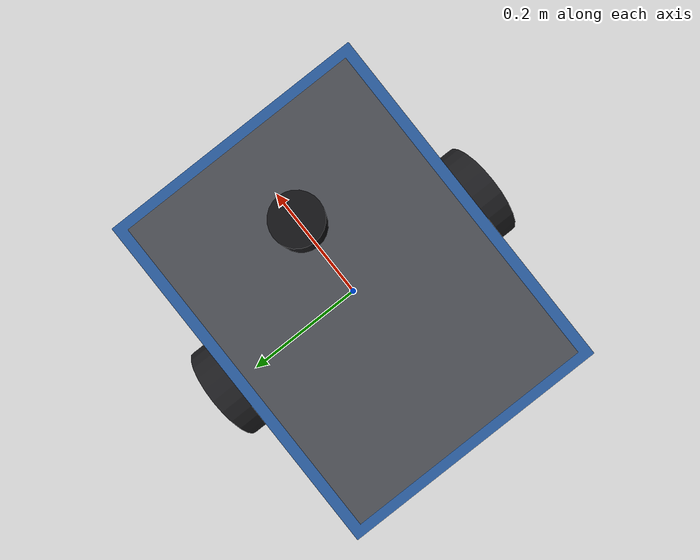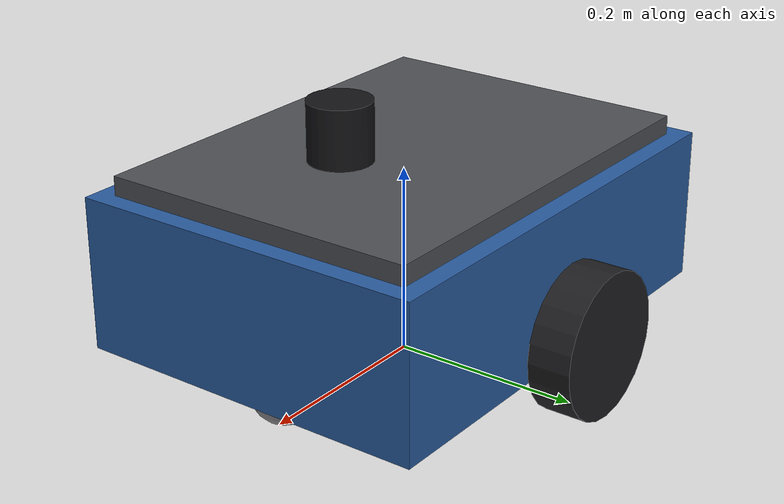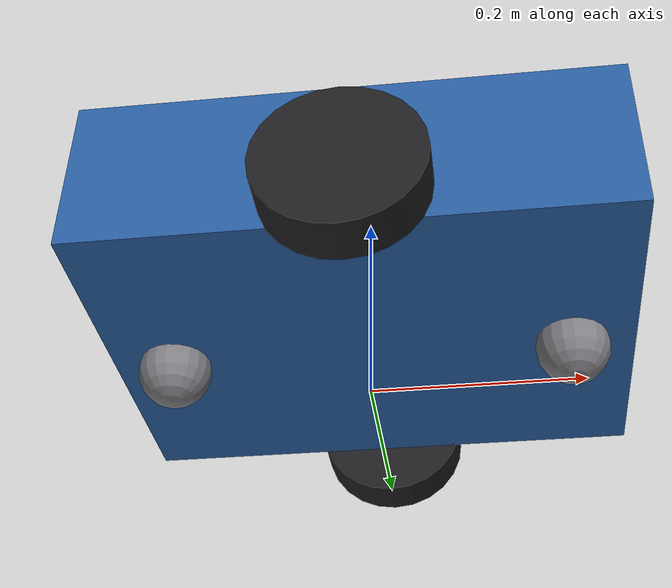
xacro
<?xml version="1.0"?>
<!-- 差速小车：两个驱动轮 + 前后万向球，尺寸接近常见的室内 AGV（0.50 x 0.40 m）。 -->
<robot name="diff_car" xmlns:xacro="http://www.ros.org/wiki/xacro">
  <xacro:include filename="$(find robot_nav_sim)/urdf/common.xacro"/>

  <xacro:property name="wheel_r" value="0.075"/>
  <xacro:property name="wheel_w" value="0.045"/>
  <xacro:property name="wheel_sep" value="0.44"/>
  <xacro:property name="body_l" value="0.50"/>
  <xacro:property name="body_w" value="0.38"/>
  <xacro:property name="body_t" value="0.16"/>
  <!-- 底盘中心离地高度：轮心高度 wheel_r，底盘中心再高 0.05 -->
  <xacro:property name="body_z" value="${wheel_r + 0.05}"/>

  <material name="car_blue"><color rgba="0.16 0.36 0.62 1"/></material>
  <material name="deck_grey"><color rgba="0.30 0.31 0.33 1"/></material>

  <link name="${root}"/>
  <joint name="base_joint" type="fixed">
    <parent link="${root}"/>
    <child link="${trunk}"/>
    <origin xyz="0 0 ${body_z}" rpy="0 0 0"/>
  </joint>

  <link name="${trunk}">
    <inertial>
      <mass value="12.0"/>
      <inertia ixx="0.17" ixy="0" ixz="0" iyy="0.27" iyz="0" izz="0.40"/>
    </inertial>
    <visual>
      <geometry><box size="${body_l} ${body_w} ${body_t}"/></geometry>
      <material name="car_blue"/>
    </visual>
    <visual>
      <origin xyz="0 0 ${body_t / 2 + 0.01}" rpy="0 0 0"/>
      <geometry><box size="${body_l - 0.04} ${body_w - 0.04} 0.02"/></geometry>
      <material name="deck_grey"/>
    </visual>
    <collision>
      <geometry><box size="${body_l} ${body_w} ${body_t}"/></geometry>
    </collision>
  </link>

  <xacro:drive_wheel name="left_wheel"  parent="${trunk}" xyz="0 ${wheel_sep / 2} ${wheel_r - body_z}"
                     radius="${wheel_r}" width="${wheel_w}"/>
  <xacro:drive_wheel name="right_wheel" parent="${trunk}" xyz="0 ${-wheel_sep / 2} ${wheel_r - body_z}"
                     radius="${wheel_r}" width="${wheel_w}"/>
  <xacro:caster name="front_caster" parent="${trunk}" xyz="0.19 0 ${0.035 - body_z}" radius="0.035" visible="true"/>
  <xacro:caster name="rear_caster"  parent="${trunk}" xyz="-0.19 0 ${0.035 - body_z}" radius="0.035" visible="true"/>

  <!-- Mid-360 装在车顶中间 -->
  <xacro:mid360 parent="${trunk}" xyz="0.10 0 ${body_t / 2 + 0.085}"/>

  <xacro:diff_drive_plugin separation="${wheel_sep}" radius="${wheel_r}" max_v="1.0" max_w="2.0"/>
  <xacro:common_plugins/>
</robot>

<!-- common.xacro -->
<!-- 三台机器人共用的部分：Mid-360 雷达 + IMU、关节状态、仿真真值。话题名对三台机器人都一样。 -->
<robot xmlns:xacro="http://www.ros.org/wiki/xacro">

  <xacro:arg name="root_link" default="base_footprint"/>
  <xacro:arg name="trunk_link" default="base_link"/>
  <xacro:property name="root" value="$(arg root_link)"/>
  <xacro:property name="trunk" value="$(arg trunk_link)"/>

  <material name="lidar_black"><color rgba="0.08 0.08 0.09 1"/></material>

  <!--
    Livox Mid-360 近似模型：gpu_lidar，水平 360°（900 点），垂直 -7°~52°（32 线），10 Hz，测距 0.1~40 m。
    真机是非重复扫描，这里用规则扫描近似；对 2D 导航和 3D 建图练习足够。
    内置 IMU 200 Hz，和雷达同一个坐标系（真机有几厘米偏移，这里忽略）。
  -->
  <xacro:macro name="mid360" params="parent xyz rpy:='0 0 0'">
    <joint name="mid360_joint" type="fixed">
      <parent link="${parent}"/>
      <child link="mid360_link"/>
      <origin xyz="${xyz}" rpy="${rpy}"/>
    </joint>
    <link name="mid360_link">
      <visual>
        <origin xyz="0 0 -0.02" rpy="0 0 0"/>
        <geometry><cylinder radius="0.0325" length="0.06"/></geometry>
        <material name="lidar_black"/>
      </visual>
    </link>
    <gazebo reference="mid360_link">
      <sensor name="mid360" type="gpu_lidar">
        <gz_frame_id>mid360_link</gz_frame_id>
        <topic>/mid360/scan</topic>
        <update_rate>10</update_rate>
        <always_on>true</always_on>
        <visualize>false</visualize>
        <lidar>
          <scan>
            <horizontal>
              <samples>900</samples>
              <resolution>1</resolution>
              <min_angle>-3.14159</min_angle>
              <max_angle>3.14159</max_angle>
            </horizontal>
            <vertical>
              <samples>32</samples>
              <resolution>1</resolution>
              <min_angle>-0.1222</min_angle>
              <max_angle>0.9076</max_angle>
            </vertical>
          </scan>
          <range>
            <min>0.1</min>
            <max>40.0</max>
            <resolution>0.01</resolution>
          </range>
          <noise>
            <type>gaussian</type>
            <mean>0.0</mean>
            <stddev>0.01</stddev>
          </noise>
        </lidar>
      </sensor>
      <sensor name="mid360_imu" type="imu">
        <gz_frame_id>mid360_link</gz_frame_id>
        <topic>/mid360/imu</topic>
        <update_rate>200</update_rate>
        <always_on>true</always_on>
        <imu>
          <angular_velocity>
            <x><noise type="gaussian"><mean>0</mean><stddev>0.002</stddev></noise></x>
            <y><noise type="gaussian"><mean>0</mean><stddev>0.002</stddev></noise></y>
            <z><noise type="gaussian"><mean>0</mean><stddev>0.002</stddev></noise></z>
          </angular_velocity>
          <linear_acceleration>
            <x><noise type="gaussian"><mean>0</mean><stddev>0.02</stddev></noise></x>
            <y><noise type="gaussian"><mean>0</mean><stddev>0.02</stddev></noise></y>
            <z><noise type="gaussian"><mean>0</mean><stddev>0.02</stddev></noise></z>
          </linear_acceleration>
        </imu>
      </sensor>
    </gazebo>
  </xacro:macro>

  <!-- 关节状态 + 仿真真值（3D 位姿，只用于楼层自动识别和评估，导航本身不用） -->
  <xacro:macro name="common_plugins">
    <gazebo>
      <plugin filename="gz-sim-joint-state-publisher-system" name="gz::sim::systems::JointStatePublisher">
        <topic>/robot/joint_states</topic>
      </plugin>
      <plugin filename="gz-sim-odometry-publisher-system" name="gz::sim::systems::OdometryPublisher">
        <odom_frame>world</odom_frame>
        <robot_base_frame>${root}</robot_base_frame>
        <odom_topic>/robot/ground_truth</odom_topic>
        <tf_topic>/robot/ground_truth/tf</tf_topic>
        <dimensions>3</dimensions>
        <odom_publish_frequency>50</odom_publish_frequency>
      </plugin>
    </gazebo>
  </xacro:macro>

  <!-- 差速驱动：订阅 /robot/cmd_vel，发布轮式里程计 odom -> base_footprint -->
  <xacro:macro name="diff_drive_plugin" params="separation radius max_v:=1.0 max_w:=2.0">
    <gazebo>
      <plugin filename="gz-sim-diff-drive-system" name="gz::sim::systems::DiffDrive">
        <left_joint>left_wheel_joint</left_joint>
        <right_joint>right_wheel_joint</right_joint>
        <wheel_separation>${separation}</wheel_separation>
        <wheel_radius>${radius}</wheel_radius>
        <max_linear_acceleration>1.5</max_linear_acceleration>
        <max_angular_acceleration>3.0</max_angular_acceleration>
        <max_linear_velocity>${max_v}</max_linear_velocity>
        <max_angular_velocity>${max_w}</max_angular_velocity>
        <topic>/robot/cmd_vel</topic>
        <odom_topic>/robot/odom</odom_topic>
        <tf_topic>/robot/tf</tf_topic>
        <frame_id>odom</frame_id>
        <child_frame_id>${root}</child_frame_id>
        <odom_publish_frequency>50</odom_publish_frequency>
      </plugin>
    </gazebo>
  </xacro:macro>

  <!-- 四轮滑移转向（Go2 的隐藏底盘用）：四个轮子都驱动，爬坡时前后总有轮子着地 -->
  <xacro:macro name="skid_drive_plugin" params="separation radius max_v:=1.0 max_w:=2.0">
    <gazebo>
      <plugin filename="gz-sim-diff-drive-system" name="gz::sim::systems::DiffDrive">
        <left_joint>front_left_wheel_joint</left_joint>
        <left_joint>rear_left_wheel_joint</left_joint>
        <right_joint>front_right_wheel_joint</right_joint>
        <right_joint>rear_right_wheel_joint</right_joint>
        <wheel_separation>${separation}</wheel_separation>
        <wheel_radius>${radius}</wheel_radius>
        <max_linear_acceleration>1.5</max_linear_acceleration>
        <max_angular_acceleration>3.0</max_angular_acceleration>
        <max_linear_velocity>${max_v}</max_linear_velocity>
        <max_angular_velocity>${max_w}</max_angular_velocity>
        <topic>/robot/cmd_vel</topic>
        <odom_topic>/robot/odom</odom_topic>
        <tf_topic>/robot/tf</tf_topic>
        <frame_id>odom</frame_id>
        <child_frame_id>${root}</child_frame_id>
        <odom_publish_frequency>50</odom_publish_frequency>
      </plugin>
    </gazebo>
  </xacro:macro>

  <!-- 驱动轮：continuous 关节，绕轮轴旋转 -->
  <xacro:macro name="drive_wheel" params="name parent xyz radius width mass:=0.6 visible:=true mu:=1.2">
    <joint name="${name}_joint" type="continuous">
      <parent link="${parent}"/>
      <child link="${name}"/>
      <origin xyz="${xyz}" rpy="-1.5708 0 0"/>
      <axis xyz="0 0 1"/>
      <limit effort="200" velocity="40"/>
    </joint>
    <link name="${name}">
      <inertial>
        <mass value="${mass}"/>
        <inertia ixx="${mass * (3 * radius * radius + width * width) / 12}" ixy="0" ixz="0"
                 iyy="${mass * (3 * radius * radius + width * width) / 12}" iyz="0"
                 izz="${mass * radius * radius / 2}"/>
      </inertial>
      <xacro:if value="${visible}">
        <visual>
          <geometry><cylinder radius="${radius}" length="${width}"/></geometry>
          <material name="tire"><color rgba="0.12 0.12 0.13 1"/></material>
        </visual>
      </xacro:if>
      <collision>
        <geometry><cylinder radius="${radius}" length="${width}"/></geometry>
      </collision>
    </link>
    <gazebo reference="${name}">
      <mu1>${mu}</mu1>
      <mu2>${mu}</mu2>
    </gazebo>
  </xacro:macro>

  <!-- 万向球：零摩擦球体，单独保留成一个 link 以便设置摩擦 -->
  <xacro:macro name="caster" params="name parent xyz radius visible:=false">
    <joint name="${name}_joint" type="fixed">
      <parent link="${parent}"/>
      <child link="${name}"/>
      <origin xyz="${xyz}" rpy="0 0 0"/>
    </joint>
    <link name="${name}">
      <inertial>
        <mass value="0.2"/>
        <inertia ixx="0.0002" ixy="0" ixz="0" iyy="0.0002" iyz="0" izz="0.0002"/>
      </inertial>
      <xacro:if value="${visible}">
        <visual>
          <geometry><sphere radius="${radius}"/></geometry>
          <material name="caster_grey"><color rgba="0.5 0.5 0.52 1"/></material>
        </visual>
      </xacro:if>
      <collision>
        <geometry><sphere radius="${radius}"/></geometry>
      </collision>
    </link>
    <gazebo reference="${name}_joint">
      <preserveFixedJoint>true</preserveFixedJoint>
    </gazebo>
    <gazebo reference="${name}">
      <mu1>0.0</mu1>
      <mu2>0.0</mu2>
    </gazebo>
  </xacro:macro>
</robot>
